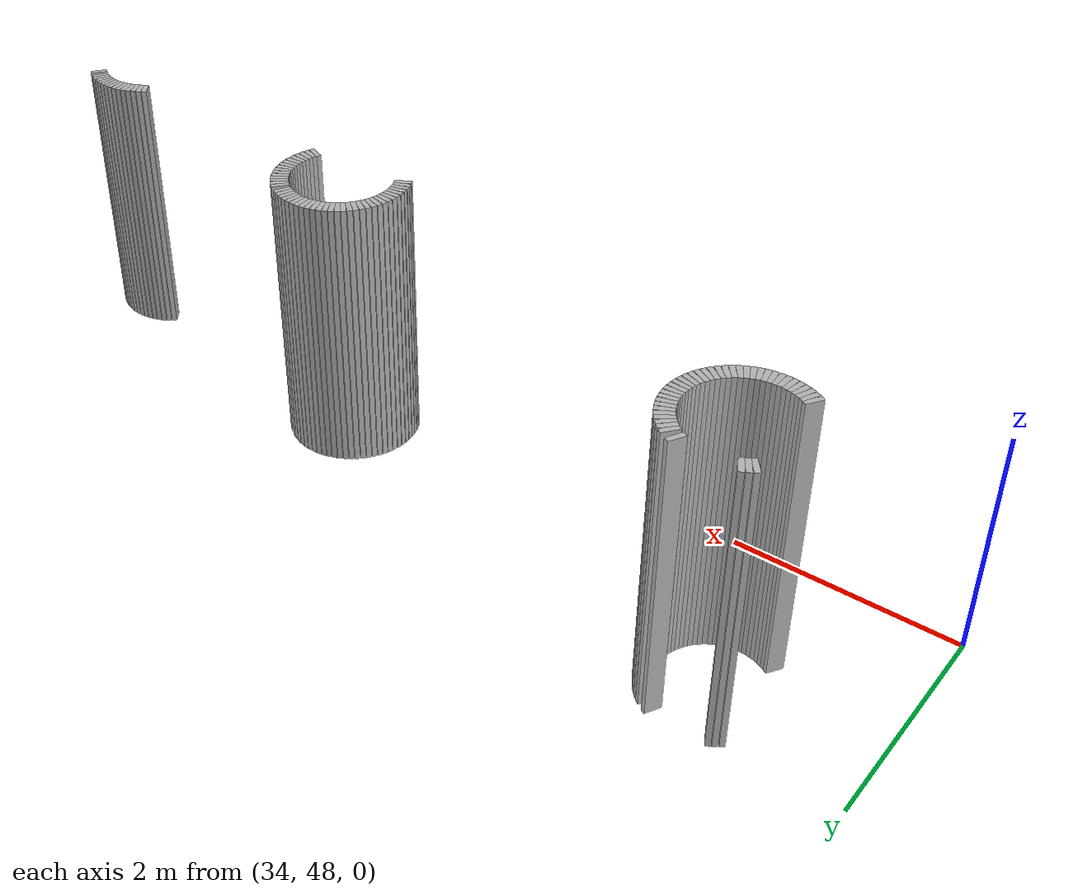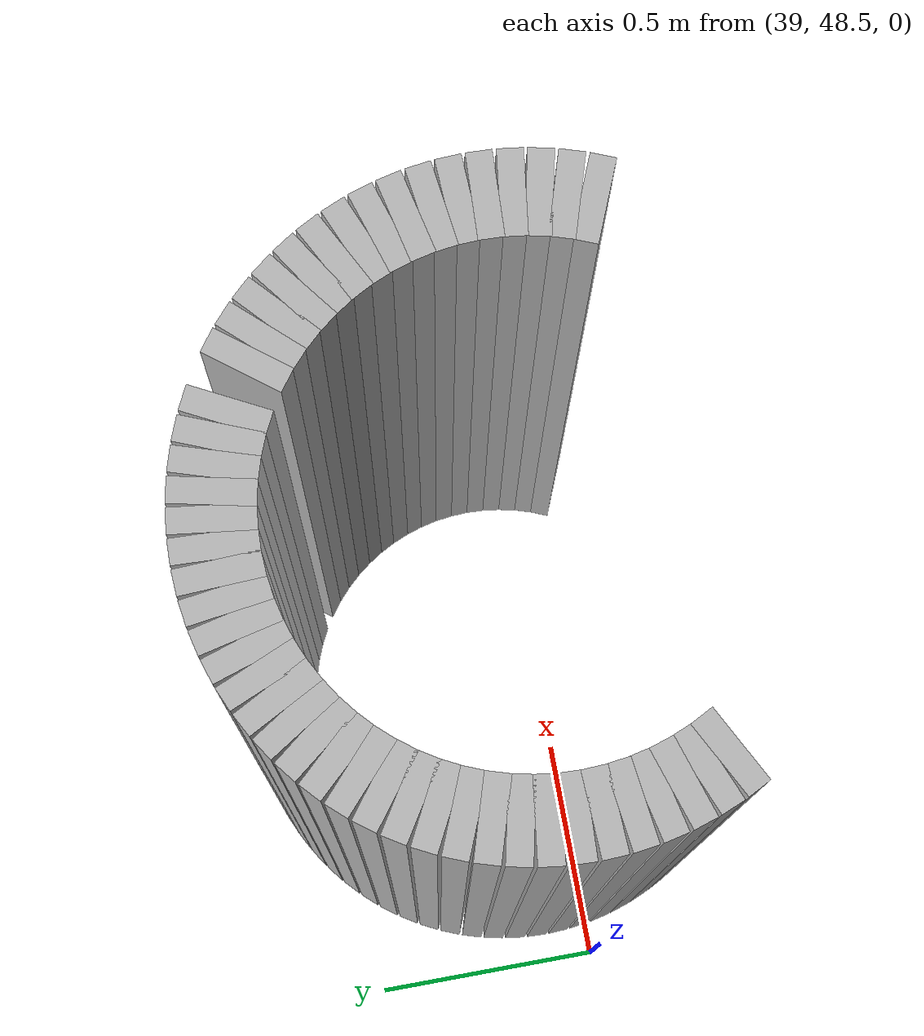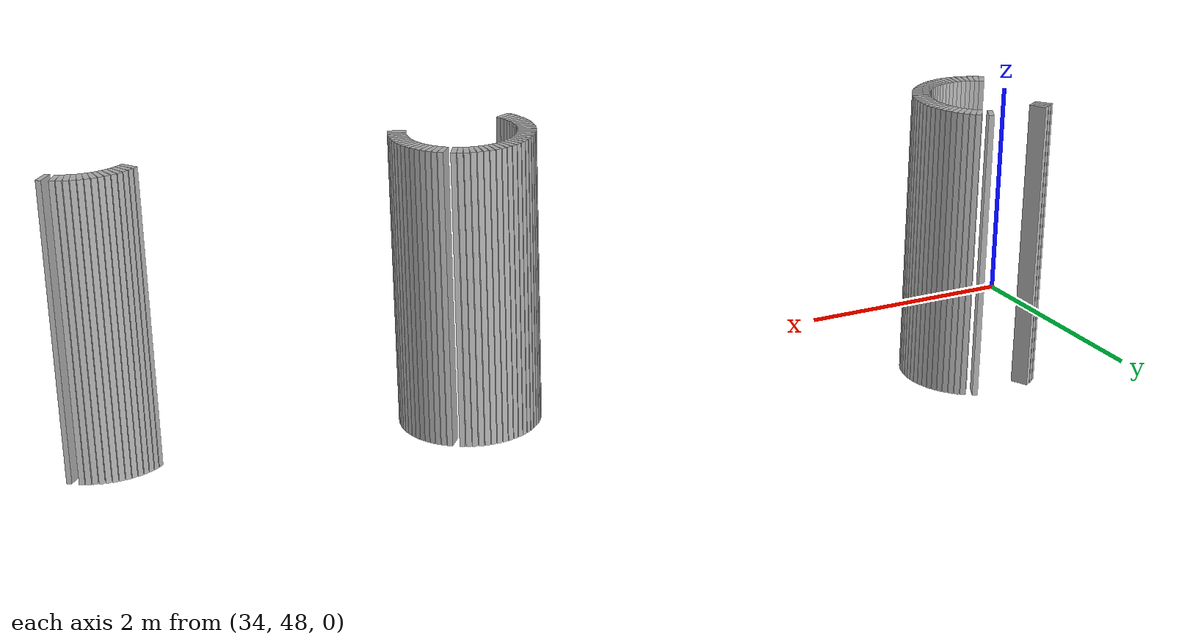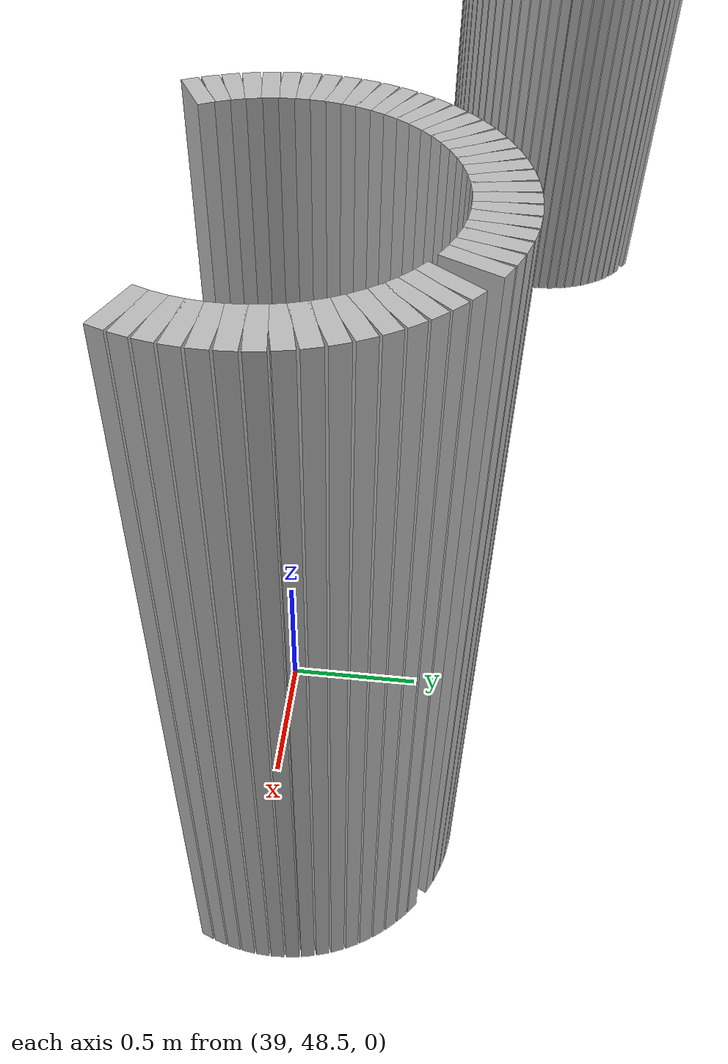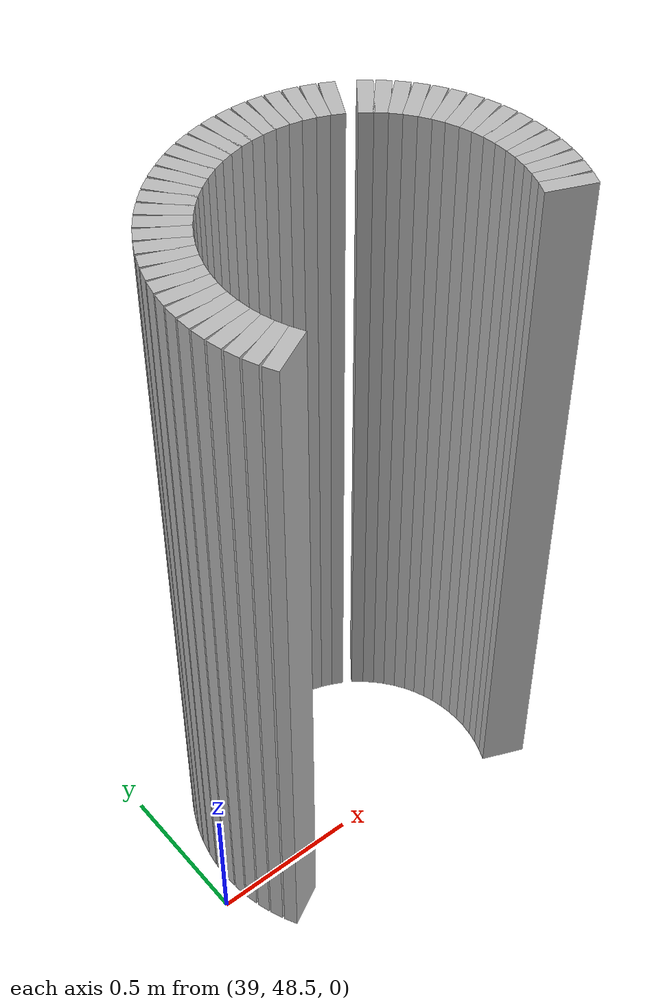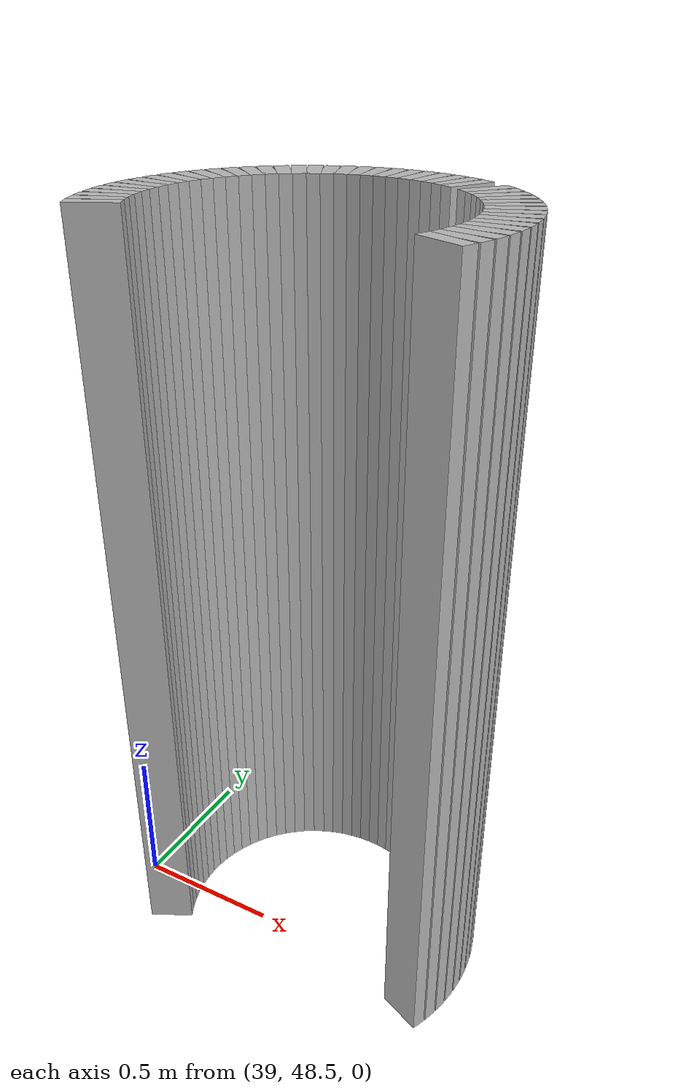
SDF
<sdf version="1.6">
 <model name="sps_2603">
  <static>1</static>
  <allow_auto_disable>0</allow_auto_disable>
  <link name="Wall696">
   <collision name="collision"><geometry><box><size>0.0454008 0.15 2.5</size></box></geometry></collision>
   <visual name="visual">
    <geometry><box><size>0.0454008 0.15 2.5</size></box></geometry>
    <transparency>0.0</transparency>
   </visual>
   <pose>42.9055 48.3673 1.25 0 0 -0.654794</pose>
  </link>
  <link name="Wall753">
   <collision name="collision"><geometry><box><size>0.0453637 0.15 2.5</size></box></geometry></collision>
   <visual name="visual">
    <geometry><box><size>0.0453637 0.15 2.5</size></box></geometry>
    <transparency>0.0</transparency>
   </visual>
   <pose>42.2728 48.3675 1.25 0 -0 0.653727</pose>
  </link>
  <link name="Wall754">
   <collision name="collision"><geometry><box><size>0.0454964 0.15 2.5</size></box></geometry></collision>
   <visual name="visual">
    <geometry><box><size>0.0454964 0.15 2.5</size></box></geometry>
    <transparency>0.0</transparency>
   </visual>
   <pose>42.3101 48.3935 1.25 0 -0 0.566421</pose>
  </link>
  <link name="Wall755">
   <collision name="collision"><geometry><box><size>0.04526 0.15 2.5</size></box></geometry></collision>
   <visual name="visual">
    <geometry><box><size>0.04526 0.15 2.5</size></box></geometry>
    <transparency>0.0</transparency>
   </visual>
   <pose>42.3494 48.4161 1.25 0 -0 0.476313</pose>
  </link>
  <link name="Wall756">
   <collision name="collision"><geometry><box><size>0.0453069 0.15 2.5</size></box></geometry></collision>
   <visual name="visual">
    <geometry><box><size>0.0453069 0.15 2.5</size></box></geometry>
    <transparency>0.0</transparency>
   </visual>
   <pose>42.3904 48.4352 1.25 0 -0 0.395517</pose>
  </link>
  <link name="Wall757">
   <collision name="collision"><geometry><box><size>0.0454622 0.15 2.5</size></box></geometry></collision>
   <visual name="visual">
    <geometry><box><size>0.0454622 0.15 2.5</size></box></geometry>
    <transparency>0.0</transparency>
   </visual>
   <pose>42.433 48.4507 1.25 0 -0 0.302645</pose>
  </link>
  <link name="Wall758">
   <collision name="collision"><geometry><box><size>0.0452689 0.15 2.5</size></box></geometry></collision>
   <visual name="visual">
    <geometry><box><size>0.0452689 0.15 2.5</size></box></geometry>
    <transparency>0.0</transparency>
   </visual>
   <pose>42.4768 48.4624 1.25 0 -0 0.218815</pose>
  </link>
  <link name="Wall759">
   <collision name="collision"><geometry><box><size>0.0453788 0.15 2.5</size></box></geometry></collision>
   <visual name="visual">
    <geometry><box><size>0.0453788 0.15 2.5</size></box></geometry>
    <transparency>0.0</transparency>
   </visual>
   <pose>42.5214 48.4703 1.25 0 -0 0.132196</pose>
  </link>
  <link name="Wall760">
   <collision name="collision"><geometry><box><size>0.0454548 0.15 2.5</size></box></geometry></collision>
   <visual name="visual">
    <geometry><box><size>0.0454548 0.15 2.5</size></box></geometry>
    <transparency>0.0</transparency>
   </visual>
   <pose>42.5666 48.4743 1.25 0 -0 0.0443258</pose>
  </link>
  <link name="Wall761">
   <collision name="collision"><geometry><box><size>0.0452719 0.15 2.5</size></box></geometry></collision>
   <visual name="visual">
    <geometry><box><size>0.0452719 0.15 2.5</size></box></geometry>
    <transparency>0.0</transparency>
   </visual>
   <pose>42.6119 48.4743 1.25 0 0 -0.044505</pose>
  </link>
  <link name="Wall762">
   <collision name="collision"><geometry><box><size>0.0453788 0.15 2.5</size></box></geometry></collision>
   <visual name="visual">
    <geometry><box><size>0.0453788 0.15 2.5</size></box></geometry>
    <transparency>0.0</transparency>
   </visual>
   <pose>42.657 48.4703 1.25 0 0 -0.132196</pose>
  </link>
  <link name="Wall763">
   <collision name="collision"><geometry><box><size>0.0454476 0.15 2.5</size></box></geometry></collision>
   <visual name="visual">
    <geometry><box><size>0.0454476 0.15 2.5</size></box></geometry>
    <transparency>0.0</transparency>
   </visual>
   <pose>42.7017 48.4624 1.25 0 0 -0.217941</pose>
  </link>
  <link name="Wall764">
   <collision name="collision"><geometry><box><size>0.0452874 0.15 2.5</size></box></geometry></collision>
   <visual name="visual">
    <geometry><box><size>0.0452874 0.15 2.5</size></box></geometry>
    <transparency>0.0</transparency>
   </visual>
   <pose>42.7454 48.4507 1.25 0 0 -0.30385</pose>
  </link>
  <link name="Wall765">
   <collision name="collision"><geometry><box><size>0.0453069 0.15 2.5</size></box></geometry></collision>
   <visual name="visual">
    <geometry><box><size>0.0453069 0.15 2.5</size></box></geometry>
    <transparency>0.0</transparency>
   </visual>
   <pose>42.788 48.4352 1.25 0 0 -0.395517</pose>
  </link>
  <link name="Wall766">
   <collision name="collision"><geometry><box><size>0.0455348 0.15 2.5</size></box></geometry></collision>
   <visual name="visual">
    <geometry><box><size>0.0455348 0.15 2.5</size></box></geometry>
    <transparency>0.0</transparency>
   </visual>
   <pose>42.8291 48.416 1.25 0 0 -0.479234</pose>
  </link>
  <link name="Wall1004">
   <collision name="collision"><geometry><box><size>0.0453524 0.15 2.5</size></box></geometry></collision>
   <visual name="visual">
    <geometry><box><size>0.0453524 0.15 2.5</size></box></geometry>
    <transparency>0.0</transparency>
   </visual>
   <pose>39.9741 49.0053 1.25 0 0 -0.655614</pose>
  </link>
  <link name="Wall1005">
   <collision name="collision"><geometry><box><size>0.0454423 0.15 2.5</size></box></geometry></collision>
   <visual name="visual">
    <geometry><box><size>0.0454423 0.15 2.5</size></box></geometry>
    <transparency>0.0</transparency>
   </visual>
   <pose>40.0088 48.9761 1.25 0 0 -0.743597</pose>
  </link>
  <link name="Wall1006">
   <collision name="collision"><geometry><box><size>0.0452735 0.15 2.5</size></box></geometry></collision>
   <visual name="visual">
    <geometry><box><size>0.0452735 0.15 2.5</size></box></geometry>
    <transparency>0.0</transparency>
   </visual>
   <pose>40.0408 48.944 1.25 0 0 -0.829263</pose>
  </link>
  <link name="Wall1007">
   <collision name="collision"><geometry><box><size>0.0453637 0.15 2.5</size></box></geometry></collision>
   <visual name="visual">
    <geometry><box><size>0.0453637 0.15 2.5</size></box></geometry>
    <transparency>0.0</transparency>
   </visual>
   <pose>40.0698 48.9093 1.25 0 0 -0.91707</pose>
  </link>
  <link name="Wall1008">
   <collision name="collision"><geometry><box><size>0.045342 0.15 2.5</size></box></geometry></collision>
   <visual name="visual">
    <geometry><box><size>0.045342 0.15 2.5</size></box></geometry>
    <transparency>0.0</transparency>
   </visual>
   <pose>40.0958 48.8722 1.25 0 0 -1.00221</pose>
  </link>
  <link name="Wall1009">
   <collision name="collision"><geometry><box><size>0.0453724 0.15 2.5</size></box></geometry></collision>
   <visual name="visual">
    <geometry><box><size>0.0453724 0.15 2.5</size></box></geometry>
    <transparency>0.0</transparency>
   </visual>
   <pose>40.1186 48.833 1.25 0 0 -1.0897</pose>
  </link>
  <link name="Wall1010">
   <collision name="collision"><geometry><box><size>0.0454525 0.15 2.5</size></box></geometry></collision>
   <visual name="visual">
    <geometry><box><size>0.0454525 0.15 2.5</size></box></geometry>
    <transparency>0.0</transparency>
   </visual>
   <pose>40.1377 48.7919 1.25 0 0 -1.17807</pose>
  </link>
  <link name="Wall1011">
   <collision name="collision"><geometry><box><size>0.0453057 0.15 2.5</size></box></geometry></collision>
   <visual name="visual">
    <geometry><box><size>0.0453057 0.15 2.5</size></box></geometry>
    <transparency>0.0</transparency>
   </visual>
   <pose>40.1533 48.7493 1.25 0 0 -1.26566</pose>
  </link>
  <link name="Wall1012">
   <collision name="collision"><geometry><box><size>0.0454476 0.15 2.5</size></box></geometry></collision>
   <visual name="visual">
    <geometry><box><size>0.0454476 0.15 2.5</size></box></geometry>
    <transparency>0.0</transparency>
   </visual>
   <pose>40.165 48.7055 1.25 0 0 -1.35286</pose>
  </link>
  <link name="Wall1013">
   <collision name="collision"><geometry><box><size>0.0453551 0.15 2.5</size></box></geometry></collision>
   <visual name="visual">
    <geometry><box><size>0.0453551 0.15 2.5</size></box></geometry>
    <transparency>0.0</transparency>
   </visual>
   <pose>40.1728 48.6608 1.25 0 0 -1.4426</pose>
  </link>
  <link name="Wall1014">
   <collision name="collision"><geometry><box><size>0.0452692 0.15 2.5</size></box></geometry></collision>
   <visual name="visual">
    <geometry><box><size>0.0452692 0.15 2.5</size></box></geometry>
    <transparency>0.0</transparency>
   </visual>
   <pose>40.1767 48.6157 1.25 0 0 -1.52764</pose>
  </link>
  <link name="Wall1015">
   <collision name="collision"><geometry><box><size>0.0454521 0.15 2.5</size></box></geometry></collision>
   <visual name="visual">
    <geometry><box><size>0.0454521 0.15 2.5</size></box></geometry>
    <transparency>0.0</transparency>
   </visual>
   <pose>40.1767 48.5704 1.25 0 0 -1.61378</pose>
  </link>
  <link name="Wall1016">
   <collision name="collision"><geometry><box><size>0.0453869 0.15 2.5</size></box></geometry></collision>
   <visual name="visual">
    <geometry><box><size>0.0453869 0.15 2.5</size></box></geometry>
    <transparency>0.0</transparency>
   </visual>
   <pose>40.1727 48.5252 1.25 0 0 -1.70433</pose>
  </link>
  <link name="Wall1017">
   <collision name="collision"><geometry><box><size>0.0452557 0.15 2.5</size></box></geometry></collision>
   <visual name="visual">
    <geometry><box><size>0.0452557 0.15 2.5</size></box></geometry>
    <transparency>0.0</transparency>
   </visual>
   <pose>40.1648 48.4806 1.25 0 0 -1.78829</pose>
  </link>
  <link name="Wall1018">
   <collision name="collision"><geometry><box><size>0.0454804 0.15 2.5</size></box></geometry></collision>
   <visual name="visual">
    <geometry><box><size>0.0454804 0.15 2.5</size></box></geometry>
    <transparency>0.0</transparency>
   </visual>
   <pose>40.1531 48.4368 1.25 0 0 -1.87472</pose>
  </link>
  <link name="Wall1019">
   <collision name="collision"><geometry><box><size>0.0452834 0.15 2.5</size></box></geometry></collision>
   <visual name="visual">
    <geometry><box><size>0.0452834 0.15 2.5</size></box></geometry>
    <transparency>0.0</transparency>
   </visual>
   <pose>40.1376 48.3942 1.25 0 0 -1.96507</pose>
  </link>
  <link name="Wall1045">
   <collision name="collision"><geometry><box><size>0.0453724 0.15 2.5</size></box></geometry></collision>
   <visual name="visual">
    <geometry><box><size>0.0453724 0.15 2.5</size></box></geometry>
    <transparency>0.0</transparency>
   </visual>
   <pose>39.1967 48.3534 1.25 0 -0 2.05189</pose>
  </link>
  <link name="Wall1046">
   <collision name="collision"><geometry><box><size>0.0453827 0.15 2.5</size></box></geometry></collision>
   <visual name="visual">
    <geometry><box><size>0.0453827 0.15 2.5</size></box></geometry>
    <transparency>0.0</transparency>
   </visual>
   <pose>39.1776 48.3945 1.25 0 -0 1.95979</pose>
  </link>
  <link name="Wall1047">
   <collision name="collision"><geometry><box><size>0.0453611 0.15 2.5</size></box></geometry></collision>
   <visual name="visual">
    <geometry><box><size>0.0453611 0.15 2.5</size></box></geometry>
    <transparency>0.0</transparency>
   </visual>
   <pose>39.1621 48.4371 1.25 0 -0 1.87978</pose>
  </link>
  <link name="Wall1048">
   <collision name="collision"><geometry><box><size>0.0454345 0.15 2.5</size></box></geometry></collision>
   <visual name="visual">
    <geometry><box><size>0.0454345 0.15 2.5</size></box></geometry>
    <transparency>0.0</transparency>
   </visual>
   <pose>39.1504 48.4809 1.25 0 -0 1.78743</pose>
  </link>
  <link name="Wall1049">
   <collision name="collision"><geometry><box><size>0.0451735 0.15 2.5</size></box></geometry></collision>
   <visual name="visual">
    <geometry><box><size>0.0451735 0.15 2.5</size></box></geometry>
    <transparency>0.0</transparency>
   </visual>
   <pose>39.1426 48.5255 1.25 0 -0 1.69951</pose>
  </link>
  <link name="Wall1050">
   <collision name="collision"><geometry><box><size>0.0454548 0.15 2.5</size></box></geometry></collision>
   <visual name="visual">
    <geometry><box><size>0.0454548 0.15 2.5</size></box></geometry>
    <transparency>0.0</transparency>
   </visual>
   <pose>39.1387 48.5706 1.25 0 -0 1.61512</pose>
  </link>
  <link name="Wall1051">
   <collision name="collision"><geometry><box><size>0.0454548 0.15 2.5</size></box></geometry></collision>
   <visual name="visual">
    <geometry><box><size>0.0454548 0.15 2.5</size></box></geometry>
    <transparency>0.0</transparency>
   </visual>
   <pose>39.1387 48.616 1.25 0 -0 1.52647</pose>
  </link>
  <link name="Wall1052">
   <collision name="collision"><geometry><box><size>0.0453788 0.15 2.5</size></box></geometry></collision>
   <visual name="visual">
    <geometry><box><size>0.0453788 0.15 2.5</size></box></geometry>
    <transparency>0.0</transparency>
   </visual>
   <pose>39.1427 48.6612 1.25 0 -0 1.4386</pose>
  </link>
  <link name="Wall1053">
   <collision name="collision"><geometry><box><size>0.0453285 0.15 2.5</size></box></geometry></collision>
   <visual name="visual">
    <geometry><box><size>0.0453285 0.15 2.5</size></box></geometry>
    <transparency>0.0</transparency>
   </visual>
   <pose>39.1506 48.7058 1.25 0 -0 1.35227</pose>
  </link>
  <link name="Wall1054">
   <collision name="collision"><geometry><box><size>0.0452292 0.15 2.5</size></box></geometry></collision>
   <visual name="visual">
    <geometry><box><size>0.0452292 0.15 2.5</size></box></geometry>
    <transparency>0.0</transparency>
   </visual>
   <pose>39.1623 48.7495 1.25 0 -0 1.26654</pose>
  </link>
  <link name="Wall1055">
   <collision name="collision"><geometry><box><size>0.0454759 0.15 2.5</size></box></geometry></collision>
   <visual name="visual">
    <geometry><box><size>0.0454759 0.15 2.5</size></box></geometry>
    <transparency>0.0</transparency>
   </visual>
   <pose>39.1778 48.7921 1.25 0 -0 1.17683</pose>
  </link>
  <link name="Wall1056">
   <collision name="collision"><geometry><box><size>0.0453724 0.15 2.5</size></box></geometry></collision>
   <visual name="visual">
    <geometry><box><size>0.0453724 0.15 2.5</size></box></geometry>
    <transparency>0.0</transparency>
   </visual>
   <pose>39.197 48.8332 1.25 0 -0 1.0897</pose>
  </link>
  <link name="Wall1057">
   <collision name="collision"><geometry><box><size>0.0453092 0.15 2.5</size></box></geometry></collision>
   <visual name="visual">
    <geometry><box><size>0.0453092 0.15 2.5</size></box></geometry>
    <transparency>0.0</transparency>
   </visual>
   <pose>39.2197 48.8724 1.25 0 -0 1.00334</pose>
  </link>
  <link name="Wall1058">
   <collision name="collision"><geometry><box><size>0.0454008 0.15 2.5</size></box></geometry></collision>
   <visual name="visual">
    <geometry><box><size>0.0454008 0.15 2.5</size></box></geometry>
    <transparency>0.0</transparency>
   </visual>
   <pose>39.2457 48.9095 1.25 0 -0 0.916002</pose>
  </link>
  <link name="Wall1059">
   <collision name="collision"><geometry><box><size>0.0452735 0.15 2.5</size></box></geometry></collision>
   <visual name="visual">
    <geometry><box><size>0.0452735 0.15 2.5</size></box></geometry>
    <transparency>0.0</transparency>
   </visual>
   <pose>39.2748 48.9442 1.25 0 -0 0.829263</pose>
  </link>
  <link name="Wall1060">
   <collision name="collision"><geometry><box><size>0.0452735 0.15 2.5</size></box></geometry></collision>
   <visual name="visual">
    <geometry><box><size>0.0452735 0.15 2.5</size></box></geometry>
    <transparency>0.0</transparency>
   </visual>
   <pose>39.3068 48.9762 1.25 0 -0 0.741533</pose>
  </link>
  <link name="Wall1061">
   <collision name="collision"><geometry><box><size>0.0455126 0.15 2.5</size></box></geometry></collision>
   <visual name="visual">
    <geometry><box><size>0.0455126 0.15 2.5</size></box></geometry>
    <transparency>0.0</transparency>
   </visual>
   <pose>39.3415 49.0054 1.25 0 -0 0.657985</pose>
  </link>
  <link name="Wall1062">
   <collision name="collision"><geometry><box><size>0.0453659 0.15 2.5</size></box></geometry></collision>
   <visual name="visual">
    <geometry><box><size>0.0453659 0.15 2.5</size></box></geometry>
    <transparency>0.0</transparency>
   </visual>
   <pose>39.3787 49.0314 1.25 0 -0 0.561879</pose>
  </link>
  <link name="Wall1063">
   <collision name="collision"><geometry><box><size>0.0453724 0.15 2.5</size></box></geometry></collision>
   <visual name="visual">
    <geometry><box><size>0.0453724 0.15 2.5</size></box></geometry>
    <transparency>0.0</transparency>
   </visual>
   <pose>39.418 49.054 1.25 0 -0 0.481095</pose>
  </link>
  <link name="Wall1064">
   <collision name="collision"><geometry><box><size>0.0452834 0.15 2.5</size></box></geometry></collision>
   <visual name="visual">
    <geometry><box><size>0.0452834 0.15 2.5</size></box></geometry>
    <transparency>0.0</transparency>
   </visual>
   <pose>39.459 49.0732 1.25 0 -0 0.394273</pose>
  </link>
  <link name="Wall1065">
   <collision name="collision"><geometry><box><size>0.0454804 0.15 2.5</size></box></geometry></collision>
   <visual name="visual">
    <geometry><box><size>0.0454804 0.15 2.5</size></box></geometry>
    <transparency>0.0</transparency>
   </visual>
   <pose>39.5016 49.0887 1.25 0 -0 0.303926</pose>
  </link>
  <link name="Wall1066">
   <collision name="collision"><geometry><box><size>0.0452689 0.15 2.5</size></box></geometry></collision>
   <visual name="visual">
    <geometry><box><size>0.0452689 0.15 2.5</size></box></geometry>
    <transparency>0.0</transparency>
   </visual>
   <pose>39.5454 49.1004 1.25 0 -0 0.218815</pose>
  </link>
  <link name="Wall1067">
   <collision name="collision"><geometry><box><size>0.0453788 0.15 2.5</size></box></geometry></collision>
   <visual name="visual">
    <geometry><box><size>0.0453788 0.15 2.5</size></box></geometry>
    <transparency>0.0</transparency>
   </visual>
   <pose>39.59 49.1083 1.25 0 -0 0.132196</pose>
  </link>
  <link name="Wall1068">
   <collision name="collision"><geometry><box><size>0.0454471 0.15 2.5</size></box></geometry></collision>
   <visual name="visual">
    <geometry><box><size>0.0454471 0.15 2.5</size></box></geometry>
    <transparency>0.0</transparency>
   </visual>
   <pose>39.6352 49.1122 1.25 0 -0 0.0403007</pose>
  </link>
  <link name="Wall1069">
   <collision name="collision"><geometry><box><size>0.0452719 0.15 2.5</size></box></geometry></collision>
   <visual name="visual">
    <geometry><box><size>0.0452719 0.15 2.5</size></box></geometry>
    <transparency>0.0</transparency>
   </visual>
   <pose>39.6805 49.1121 1.25 0 0 -0.044505</pose>
  </link>
  <link name="Wall1070">
   <collision name="collision"><geometry><box><size>0.0453551 0.15 2.5</size></box></geometry></collision>
   <visual name="visual">
    <geometry><box><size>0.0453551 0.15 2.5</size></box></geometry>
    <transparency>0.0</transparency>
   </visual>
   <pose>39.7256 49.1082 1.25 0 0 -0.128194</pose>
  </link>
  <link name="Wall1071">
   <collision name="collision"><geometry><box><size>0.0454476 0.15 2.5</size></box></geometry></collision>
   <visual name="visual">
    <geometry><box><size>0.0454476 0.15 2.5</size></box></geometry>
    <transparency>0.0</transparency>
   </visual>
   <pose>39.7703 49.1004 1.25 0 0 -0.217941</pose>
  </link>
  <link name="Wall1072">
   <collision name="collision"><geometry><box><size>0.0453611 0.15 2.5</size></box></geometry></collision>
   <visual name="visual">
    <geometry><box><size>0.0453611 0.15 2.5</size></box></geometry>
    <transparency>0.0</transparency>
   </visual>
   <pose>39.814 49.0886 1.25 0 0 -0.308985</pose>
  </link>
  <link name="Wall1073">
   <collision name="collision"><geometry><box><size>0.0453827 0.15 2.5</size></box></geometry></collision>
   <visual name="visual">
    <geometry><box><size>0.0453827 0.15 2.5</size></box></geometry>
    <transparency>0.0</transparency>
   </visual>
   <pose>39.8567 49.0731 1.25 0 0 -0.388998</pose>
  </link>
  <link name="Wall1074">
   <collision name="collision"><geometry><box><size>0.0453724 0.15 2.5</size></box></geometry></collision>
   <visual name="visual">
    <geometry><box><size>0.0453724 0.15 2.5</size></box></geometry>
    <transparency>0.0</transparency>
   </visual>
   <pose>39.8978 49.054 1.25 0 0 -0.481095</pose>
  </link>
  <link name="Wall2352">
   <collision name="collision"><geometry><box><size>0.0453637 0.15 2.5</size></box></geometry></collision>
   <visual name="visual">
    <geometry><box><size>0.0453637 0.15 2.5</size></box></geometry>
    <transparency>0.0</transparency>
   </visual>
   <pose>35.6447 49.9473 1.25 0 0 -0.653727</pose>
  </link>
  <link name="Wall2353">
   <collision name="collision"><geometry><box><size>0.0452735 0.15 2.5</size></box></geometry></collision>
   <visual name="visual">
    <geometry><box><size>0.0452735 0.15 2.5</size></box></geometry>
    <transparency>0.0</transparency>
   </visual>
   <pose>35.6794 49.9182 1.25 0 0 -0.741533</pose>
  </link>
  <link name="Wall2354">
   <collision name="collision"><geometry><box><size>0.0453974 0.15 2.5</size></box></geometry></collision>
   <visual name="visual">
    <geometry><box><size>0.0453974 0.15 2.5</size></box></geometry>
    <transparency>0.0</transparency>
   </visual>
   <pose>35.7114 49.8862 1.25 0 0 -0.826289</pose>
  </link>
  <link name="Wall2355">
   <collision name="collision"><geometry><box><size>0.0454008 0.15 2.5</size></box></geometry></collision>
   <visual name="visual">
    <geometry><box><size>0.0454008 0.15 2.5</size></box></geometry>
    <transparency>0.0</transparency>
   </visual>
   <pose>35.7407 49.8515 1.25 0 0 -0.916002</pose>
  </link>
  <link name="Wall2356">
   <collision name="collision"><geometry><box><size>0.0454637 0.15 2.5</size></box></geometry></collision>
   <visual name="visual">
    <geometry><box><size>0.0454637 0.15 2.5</size></box></geometry>
    <transparency>0.0</transparency>
   </visual>
   <pose>35.7667 49.8143 1.25 0 0 -1.00551</pose>
  </link>
  <link name="Wall2357">
   <collision name="collision"><geometry><box><size>0.045288 0.15 2.5</size></box></geometry></collision>
   <visual name="visual">
    <geometry><box><size>0.045288 0.15 2.5</size></box></geometry>
    <transparency>0.0</transparency>
   </visual>
   <pose>35.7892 49.775 1.25 0 0 -1.09329</pose>
  </link>
  <link name="Wall2358">
   <collision name="collision"><geometry><box><size>0.0452834 0.15 2.5</size></box></geometry></collision>
   <visual name="visual">
    <geometry><box><size>0.0452834 0.15 2.5</size></box></geometry>
    <transparency>0.0</transparency>
   </visual>
   <pose>35.8083 49.734 1.25 0 0 -1.17652</pose>
  </link>
  <link name="Wall2359">
   <collision name="collision"><geometry><box><size>0.0454804 0.15 2.5</size></box></geometry></collision>
   <visual name="visual">
    <geometry><box><size>0.0454804 0.15 2.5</size></box></geometry>
    <transparency>0.0</transparency>
   </visual>
   <pose>35.8238 49.6914 1.25 0 0 -1.26687</pose>
  </link>
  <link name="Wall2360">
   <collision name="collision"><geometry><box><size>0.0452689 0.15 2.5</size></box></geometry></collision>
   <visual name="visual">
    <geometry><box><size>0.0452689 0.15 2.5</size></box></geometry>
    <transparency>0.0</transparency>
   </visual>
   <pose>35.8356 49.6476 1.25 0 0 -1.35198</pose>
  </link>
  <link name="Wall2361">
   <collision name="collision"><geometry><box><size>0.0453788 0.15 2.5</size></box></geometry></collision>
   <visual name="visual">
    <geometry><box><size>0.0453788 0.15 2.5</size></box></geometry>
    <transparency>0.0</transparency>
   </visual>
   <pose>35.8435 49.603 1.25 0 0 -1.4386</pose>
  </link>
  <link name="Wall2362">
   <collision name="collision"><geometry><box><size>0.0454446 0.15 2.5</size></box></geometry></collision>
   <visual name="visual">
    <geometry><box><size>0.0454446 0.15 2.5</size></box></geometry>
    <transparency>0.0</transparency>
   </visual>
   <pose>35.8473 49.5578 1.25 0 0 -1.53184</pose>
  </link>
  <link name="Wall2363">
   <collision name="collision"><geometry><box><size>0.0452692 0.15 2.5</size></box></geometry></collision>
   <visual name="visual">
    <geometry><box><size>0.0452692 0.15 2.5</size></box></geometry>
    <transparency>0.0</transparency>
   </visual>
   <pose>35.8473 49.5125 1.25 0 0 -1.61395</pose>
  </link>
  <link name="Wall2364">
   <collision name="collision"><geometry><box><size>0.0453551 0.15 2.5</size></box></geometry></collision>
   <visual name="visual">
    <geometry><box><size>0.0453551 0.15 2.5</size></box></geometry>
    <transparency>0.0</transparency>
   </visual>
   <pose>35.8434 49.4674 1.25 0 0 -1.69899</pose>
  </link>
  <link name="Wall2365">
   <collision name="collision"><geometry><box><size>0.0455072 0.15 2.5</size></box></geometry></collision>
   <visual name="visual">
    <geometry><box><size>0.0455072 0.15 2.5</size></box></geometry>
    <transparency>0.0</transparency>
   </visual>
   <pose>35.8356 49.4227 1.25 0 0 -1.78845</pose>
  </link>
  <link name="Wall2366">
   <collision name="collision"><geometry><box><size>0.0453029 0.15 2.5</size></box></geometry></collision>
   <visual name="visual">
    <geometry><box><size>0.0453029 0.15 2.5</size></box></geometry>
    <transparency>0.0</transparency>
   </visual>
   <pose>35.8238 49.3789 1.25 0 0 -1.88019</pose>
  </link>
  <link name="Wall2367">
   <collision name="collision"><geometry><box><size>0.0453827 0.15 2.5</size></box></geometry></collision>
   <visual name="visual">
    <geometry><box><size>0.0453827 0.15 2.5</size></box></geometry>
    <transparency>0.0</transparency>
   </visual>
   <pose>35.8082 49.3363 1.25 0 0 -1.95979</pose>
  </link>
  <link name="Wall2368">
   <collision name="collision"><geometry><box><size>0.0453724 0.15 2.5</size></box></geometry></collision>
   <visual name="visual">
    <geometry><box><size>0.0453724 0.15 2.5</size></box></geometry>
    <transparency>0.0</transparency>
   </visual>
   <pose>35.7891 49.2952 1.25 0 0 -2.05189</pose>
  </link>
  <link name="Wall2369">
   <collision name="collision"><geometry><box><size>0.045342 0.15 2.5</size></box></geometry></collision>
   <visual name="visual">
    <geometry><box><size>0.045342 0.15 2.5</size></box></geometry>
    <transparency>0.0</transparency>
   </visual>
   <pose>35.7664 49.256 1.25 0 0 -2.13938</pose>
  </link>
  <link name="Wall2370">
   <collision name="collision"><geometry><box><size>0.0453637 0.15 2.5</size></box></geometry></collision>
   <visual name="visual">
    <geometry><box><size>0.0453637 0.15 2.5</size></box></geometry>
    <transparency>0.0</transparency>
   </visual>
   <pose>35.7404 49.2189 1.25 0 0 -2.22452</pose>
  </link>
  <link name="Wall2371">
   <collision name="collision"><geometry><box><size>0.0453974 0.15 2.5</size></box></geometry></collision>
   <visual name="visual">
    <geometry><box><size>0.0453974 0.15 2.5</size></box></geometry>
    <transparency>0.0</transparency>
   </visual>
   <pose>35.7113 49.1842 1.25 0 0 -2.3153</pose>
  </link>
  <link name="Wall2372">
   <collision name="collision"><geometry><box><size>0.0453186 0.15 2.5</size></box></geometry></collision>
   <visual name="visual">
    <geometry><box><size>0.0453186 0.15 2.5</size></box></geometry>
    <transparency>0.0</transparency>
   </visual>
   <pose>35.6792 49.1522 1.25 0 0 -2.40097</pose>
  </link>
  <link name="Wall2373">
   <collision name="collision"><geometry><box><size>0.0454008 0.15 2.5</size></box></geometry></collision>
   <visual name="visual">
    <geometry><box><size>0.0454008 0.15 2.5</size></box></geometry>
    <transparency>0.0</transparency>
   </visual>
   <pose>35.6444 49.1231 1.25 0 0 -2.4868</pose>
  </link>
  <link name="Wall2374">
   <collision name="collision"><geometry><box><size>0.0452577 0.15 2.5</size></box></geometry></collision>
   <visual name="visual">
    <geometry><box><size>0.0452577 0.15 2.5</size></box></geometry>
    <transparency>0.0</transparency>
   </visual>
   <pose>35.6074 49.0971 1.25 0 0 -2.57342</pose>
  </link>
  <link name="Wall2375">
   <collision name="collision"><geometry><box><size>0.0453724 0.15 2.5</size></box></geometry></collision>
   <visual name="visual">
    <geometry><box><size>0.0453724 0.15 2.5</size></box></geometry>
    <transparency>0.0</transparency>
   </visual>
   <pose>35.5682 49.0744 1.25 0 0 -2.6605</pose>
  </link>
  <link name="Wall2376">
   <collision name="collision"><geometry><box><size>0.0454525 0.15 2.5</size></box></geometry></collision>
   <visual name="visual">
    <geometry><box><size>0.0454525 0.15 2.5</size></box></geometry>
    <transparency>0.0</transparency>
   </visual>
   <pose>35.5271 49.0552 1.25 0 0 -2.74887</pose>
  </link>
  <link name="Wall2377">
   <collision name="collision"><geometry><box><size>0.0453057 0.15 2.5</size></box></geometry></collision>
   <visual name="visual">
    <geometry><box><size>0.0453057 0.15 2.5</size></box></geometry>
    <transparency>0.0</transparency>
   </visual>
   <pose>35.4845 49.0397 1.25 0 0 -2.83646</pose>
  </link>
  <link name="Wall2378">
   <collision name="collision"><geometry><box><size>0.0454476 0.15 2.5</size></box></geometry></collision>
   <visual name="visual">
    <geometry><box><size>0.0454476 0.15 2.5</size></box></geometry>
    <transparency>0.0</transparency>
   </visual>
   <pose>35.4407 49.028 1.25 0 0 -2.92365</pose>
  </link>
  <link name="Wall2379">
   <collision name="collision"><geometry><box><size>0.0454156 0.15 2.5</size></box></geometry></collision>
   <visual name="visual">
    <geometry><box><size>0.0454156 0.15 2.5</size></box></geometry>
    <transparency>0.0</transparency>
   </visual>
   <pose>35.396 49.0202 1.25 0 0 -3.01357</pose>
  </link>
  <link name="Wall2380">
   <collision name="collision"><geometry><box><size>0.0452109 0.15 2.5</size></box></geometry></collision>
   <visual name="visual">
    <geometry><box><size>0.0452109 0.15 2.5</size></box></geometry>
    <transparency>0.0</transparency>
   </visual>
   <pose>35.3509 49.0163 1.25 0 0 -3.09703</pose>
  </link>
  <link name="Wall2381">
   <collision name="collision"><geometry><box><size>0.0454548 0.15 2.5</size></box></geometry></collision>
   <visual name="visual">
    <geometry><box><size>0.0454548 0.15 2.5</size></box></geometry>
    <transparency>0.0</transparency>
   </visual>
   <pose>35.3056 49.0163 1.25 0 -0 3.09727</pose>
  </link>
  <link name="Wall2382">
   <collision name="collision"><geometry><box><size>0.0453788 0.15 2.5</size></box></geometry></collision>
   <visual name="visual">
    <geometry><box><size>0.0453788 0.15 2.5</size></box></geometry>
    <transparency>0.0</transparency>
   </visual>
   <pose>35.2604 49.0203 1.25 0 -0 3.0094</pose>
  </link>
  <link name="Wall2383">
   <collision name="collision"><geometry><box><size>0.0453285 0.15 2.5</size></box></geometry></collision>
   <visual name="visual">
    <geometry><box><size>0.0453285 0.15 2.5</size></box></geometry>
    <transparency>0.0</transparency>
   </visual>
   <pose>35.2158 49.0282 1.25 0 -0 2.92307</pose>
  </link>
  <link name="Wall2384">
   <collision name="collision"><geometry><box><size>0.0454804 0.15 2.5</size></box></geometry></collision>
   <visual name="visual">
    <geometry><box><size>0.0454804 0.15 2.5</size></box></geometry>
    <transparency>0.0</transparency>
   </visual>
   <pose>35.1719 49.0399 1.25 0 -0 2.83767</pose>
  </link>
  <link name="Wall2385">
   <collision name="collision"><geometry><box><size>0.0452271 0.15 2.5</size></box></geometry></collision>
   <visual name="visual">
    <geometry><box><size>0.0452271 0.15 2.5</size></box></geometry>
    <transparency>0.0</transparency>
   </visual>
   <pose>35.1294 49.0554 1.25 0 -0 2.7468</pose>
  </link>
  <link name="Wall2386">
   <collision name="collision"><geometry><box><size>0.0453724 0.15 2.5</size></box></geometry></collision>
   <visual name="visual">
    <geometry><box><size>0.0453724 0.15 2.5</size></box></geometry>
    <transparency>0.0</transparency>
   </visual>
   <pose>35.0884 49.0746 1.25 0 -0 2.6605</pose>
  </link>
  <link name="Wall2387">
   <collision name="collision"><geometry><box><size>0.045342 0.15 2.5</size></box></geometry></collision>
   <visual name="visual">
    <geometry><box><size>0.045342 0.15 2.5</size></box></geometry>
    <transparency>0.0</transparency>
   </visual>
   <pose>35.0492 49.0973 1.25 0 -0 2.57301</pose>
  </link>
  <link name="Wall2409">
   <collision name="collision"><geometry><box><size>0.0453524 0.15 2.5</size></box></geometry></collision>
   <visual name="visual">
    <geometry><box><size>0.0453524 0.15 2.5</size></box></geometry>
    <transparency>0.0</transparency>
   </visual>
   <pose>35.0123 49.9475 1.25 0 -0 0.655614</pose>
  </link>
  <link name="Wall2410">
   <collision name="collision"><geometry><box><size>0.0453092 0.15 2.5</size></box></geometry></collision>
   <visual name="visual">
    <geometry><box><size>0.0453092 0.15 2.5</size></box></geometry>
    <transparency>0.0</transparency>
   </visual>
   <pose>35.0493 49.9735 1.25 0 -0 0.567452</pose>
  </link>
  <link name="Wall2411">
   <collision name="collision"><geometry><box><size>0.0453724 0.15 2.5</size></box></geometry></collision>
   <visual name="visual">
    <geometry><box><size>0.0453724 0.15 2.5</size></box></geometry>
    <transparency>0.0</transparency>
   </visual>
   <pose>35.0886 49.9962 1.25 0 -0 0.481095</pose>
  </link>
  <link name="Wall2422">
   <collision name="collision"><geometry><box><size>0.0453724 0.15 2.5</size></box></geometry></collision>
   <visual name="visual">
    <geometry><box><size>0.0453724 0.15 2.5</size></box></geometry>
    <transparency>0.0</transparency>
   </visual>
   <pose>35.5684 49.996 1.25 0 0 -0.481095</pose>
  </link>
 </model>
</sdf>
